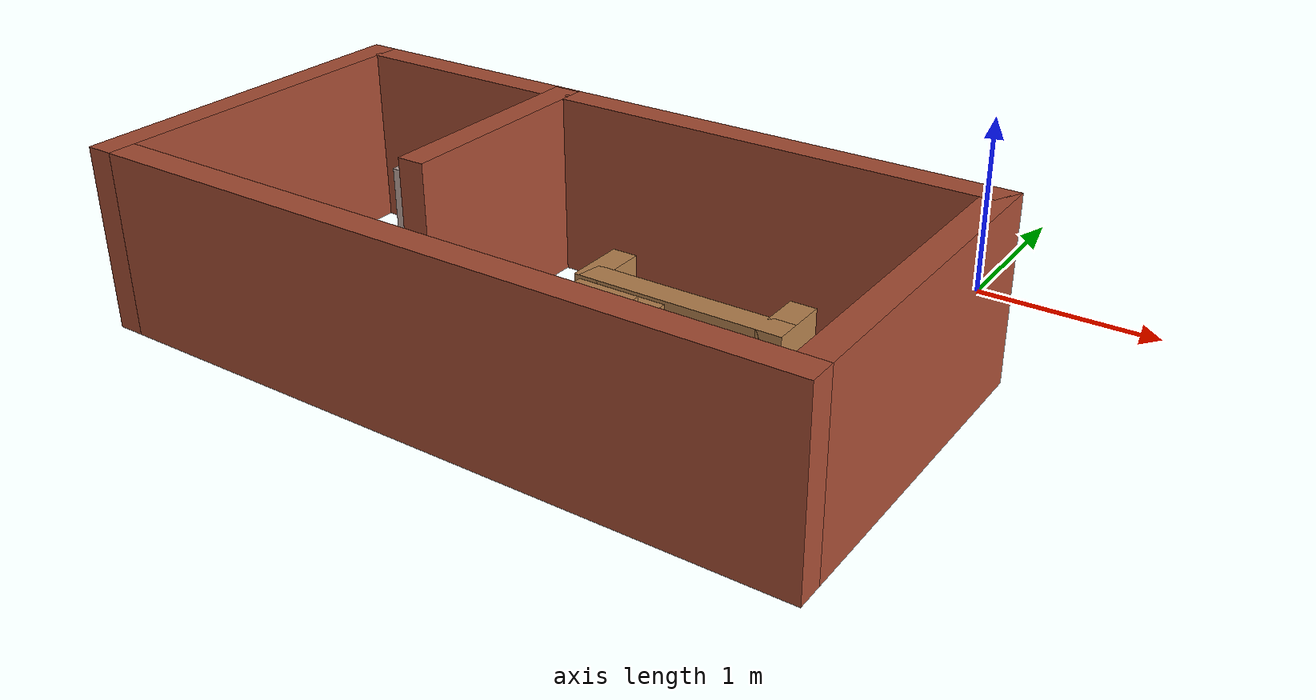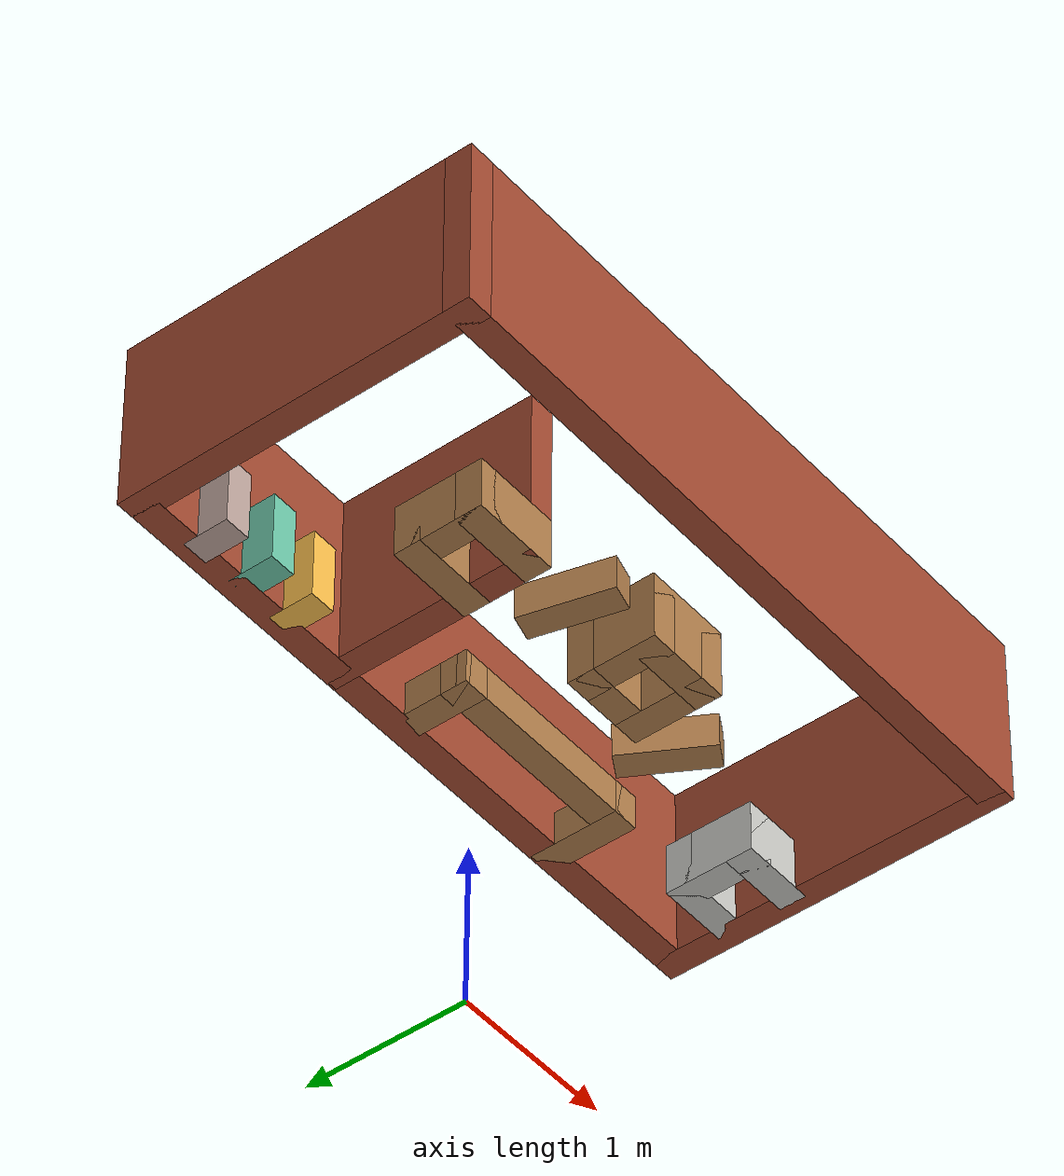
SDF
<?xml version="1.0" ?>
<sdf version='1.7'>
    <model name='my_world'>
      <pose>-1.525 -1.4325 0 0 -0 0</pose>
      <link name='Wall_11'>
        <collision name='Wall_11_Collision'>
          <geometry>
            <box>
              <size>0.25 0.15 0.4</size>
            </box>
          </geometry>
          <pose>0 0 0.2 0 -0 0</pose>
          <max_contacts>10</max_contacts>
          <surface>
            <contact>
              <ode/>
            </contact>
            <bounce/>
            <friction>
              <torsional>
                <ode/>
              </torsional>
              <ode/>
            </friction>
          </surface>
        </collision>
        <visual name='Wall_11_Visual'>
          <pose>0 0 0.2 0 -0 0</pose>
          <geometry>
            <box>
              <size>0.25 0.15 0.4</size>
            </box>
          </geometry>
          <material>
            <script>
              <uri>file://media/materials/scripts/gazebo.material</uri>
              <name>Gazebo/Grey</name>
            </script>
            <ambient>0.435294 0.796078 0.67451 1</ambient>
          </material>
          <meta>
            <layer>0</layer>
          </meta>
        </visual>
        <pose>-1.255 0.3625 0 0 -0 -1.5708</pose>
        <self_collide>0</self_collide>
        <enable_wind>0</enable_wind>
        <kinematic>0</kinematic>
      </link>
      <link name='Wall_13'>
        <collision name='Wall_13_Collision'>
          <geometry>
            <box>
              <size>0.25 0.15 0.4</size>
            </box>
          </geometry>
          <pose>0 0 0.2 0 -0 0</pose>
          <max_contacts>10</max_contacts>
          <surface>
            <contact>
              <ode/>
            </contact>
            <bounce/>
            <friction>
              <torsional>
                <ode/>
              </torsional>
              <ode/>
            </friction>
          </surface>
        </collision>
        <visual name='Wall_13_Visual'>
          <pose>0 0 0.2 0 -0 0</pose>
          <geometry>
            <box>
              <size>0.25 0.15 0.4</size>
            </box>
          </geometry>
          <material>
            <script>
              <uri>file://media/materials/scripts/gazebo.material</uri>
              <name>Gazebo/Grey</name>
            </script>
            <ambient>1 0.764706 0.305882 1</ambient>
          </material>
          <meta>
            <layer>0</layer>
          </meta>
        </visual>
        <pose>-0.965 0.3725 0 0 -0 -1.5708</pose>
        <self_collide>0</self_collide>
        <enable_wind>0</enable_wind>
        <kinematic>0</kinematic>
      </link>
      <link name='Wall_15'>
        <collision name='Wall_15_Collision'>
          <geometry>
            <box>
              <size>0.5 0.15 0.2</size>
            </box>
          </geometry>
          <pose>0 0 0.1 0 -0 0</pose>
          <max_contacts>10</max_contacts>
          <surface>
            <contact>
              <ode/>
            </contact>
            <bounce/>
            <friction>
              <torsional>
                <ode/>
              </torsional>
              <ode/>
            </friction>
          </surface>
        </collision>
        <visual name='Wall_15_Visual'>
          <pose>0 0 0.1 0 -0 0</pose>
          <geometry>
            <box>
              <size>0.5 0.15 0.2</size>
            </box>
          </geometry>
          <material>
            <script>
              <uri>file://media/materials/scripts/gazebo.material</uri>
              <name>Gazebo/Wood</name>
            </script>
            <ambient>1 1 1 1</ambient>
          </material>
          <meta>
            <layer>0</layer>
          </meta>
        </visual>
        <pose>-0.105 0.3075 0 0 -0 -1.5708</pose>
        <self_collide>0</self_collide>
        <enable_wind>0</enable_wind>
        <kinematic>0</kinematic>
      </link>
      <link name='Wall_16'>
        <collision name='Wall_16_Collision'>
          <geometry>
            <box>
              <size>1.25 0.15 0.2</size>
            </box>
          </geometry>
          <pose>0 0 0.1 0 -0 0</pose>
          <max_contacts>10</max_contacts>
          <surface>
            <contact>
              <ode/>
            </contact>
            <bounce/>
            <friction>
              <torsional>
                <ode/>
              </torsional>
              <ode/>
            </friction>
          </surface>
        </collision>
        <visual name='Wall_16_Visual'>
          <pose>0 0 0.1 0 -0 0</pose>
          <geometry>
            <box>
              <size>1.25 0.15 0.2</size>
            </box>
          </geometry>
          <material>
            <script>
              <uri>file://media/materials/scripts/gazebo.material</uri>
              <name>Gazebo/Wood</name>
            </script>
            <ambient>1 1 1 1</ambient>
          </material>
          <meta>
            <layer>0</layer>
          </meta>
        </visual>
        <pose>0.445 0.1325 0 0 -0 0</pose>
        <self_collide>0</self_collide>
        <enable_wind>0</enable_wind>
        <kinematic>0</kinematic>
      </link>
      <link name='Wall_17'>
        <collision name='Wall_17_Collision'>
          <geometry>
            <box>
              <size>0.5 0.15 0.2</size>
            </box>
          </geometry>
          <pose>0 0 0.1 0 -0 0</pose>
          <max_contacts>10</max_contacts>
          <surface>
            <contact>
              <ode/>
            </contact>
            <bounce/>
            <friction>
              <torsional>
                <ode/>
              </torsional>
              <ode/>
            </friction>
          </surface>
        </collision>
        <visual name='Wall_17_Visual'>
          <pose>0 0 0.1 0 -0 0</pose>
          <geometry>
            <box>
              <size>0.5 0.15 0.2</size>
            </box>
          </geometry>
          <material>
            <script>
              <uri>file://media/materials/scripts/gazebo.material</uri>
              <name>Gazebo/Wood</name>
            </script>
            <ambient>1 1 1 1</ambient>
          </material>
          <meta>
            <layer>0</layer>
          </meta>
        </visual>
        <pose>0.995 0.3075 0 0 -0 1.5708</pose>
        <self_collide>0</self_collide>
        <enable_wind>0</enable_wind>
        <kinematic>0</kinematic>
      </link>
      <link name='Wall_2'>
        <collision name='Wall_2_Collision'>
          <geometry>
            <box>
              <size>4 0.15 1</size>
            </box>
          </geometry>
          <pose>0 0 0.5 0 -0 0</pose>
          <max_contacts>10</max_contacts>
          <surface>
            <contact>
              <ode/>
            </contact>
            <bounce/>
            <friction>
              <torsional>
                <ode/>
              </torsional>
              <ode/>
            </friction>
          </surface>
        </collision>
        <visual name='Wall_2_Visual'>
          <pose>0 0 0.5 0 -0 0</pose>
          <geometry>
            <box>
              <size>4 0.15 1</size>
            </box>
          </geometry>
          <material>
            <script>
              <uri>file://media/materials/scripts/gazebo.material</uri>
              <name>Gazebo/Bricks</name>
            </script>
            <ambient>1 1 1 1</ambient>
          </material>
          <meta>
            <layer>0</layer>
          </meta>
        </visual>
        <pose>0 0.4925 0 0 -0 0</pose>
        <self_collide>0</self_collide>
        <enable_wind>0</enable_wind>
        <kinematic>0</kinematic>
      </link>
      <link name='Wall_28'>
        <collision name='Wall_28_Collision'>
          <geometry>
            <box>
              <size>0.5 0.15 0.4</size>
            </box>
          </geometry>
          <pose>0 0 0.2 0 -0 0</pose>
          <max_contacts>10</max_contacts>
          <surface>
            <contact>
              <ode/>
            </contact>
            <bounce/>
            <friction>
              <torsional>
                <ode/>
              </torsional>
              <ode/>
            </friction>
          </surface>
        </collision>
        <visual name='Wall_28_Visual'>
          <pose>0 0 0.2 0 -0 0</pose>
          <geometry>
            <box>
              <size>0.5 0.15 0.4</size>
            </box>
          </geometry>
          <material>
            <script>
              <uri>file://media/materials/scripts/gazebo.material</uri>
              <name>Gazebo/Wood</name>
            </script>
            <ambient>1 1 1 1</ambient>
          </material>
          <meta>
            <layer>0</layer>
          </meta>
        </visual>
        <pose>0.195 -0.5425 0 0 -0 -1.5708</pose>
        <self_collide>0</self_collide>
        <enable_wind>0</enable_wind>
        <kinematic>0</kinematic>
      </link>
      <link name='Wall_29'>
        <collision name='Wall_29_Collision'>
          <geometry>
            <box>
              <size>0.5 0.15 0.4</size>
            </box>
          </geometry>
          <pose>0 0 0.2 0 -0 0</pose>
          <max_contacts>10</max_contacts>
          <surface>
            <contact>
              <ode/>
            </contact>
            <bounce/>
            <friction>
              <torsional>
                <ode/>
              </torsional>
              <ode/>
            </friction>
          </surface>
        </collision>
        <visual name='Wall_29_Visual'>
          <pose>0 0 0.2 0 -0 0</pose>
          <geometry>
            <box>
              <size>0.5 0.15 0.4</size>
            </box>
          </geometry>
          <material>
            <script>
              <uri>file://media/materials/scripts/gazebo.material</uri>
              <name>Gazebo/Wood</name>
            </script>
            <ambient>1 1 1 1</ambient>
          </material>
          <meta>
            <layer>0</layer>
          </meta>
        </visual>
        <pose>0.37 -0.7175 0 0 -0 0</pose>
        <self_collide>0</self_collide>
        <enable_wind>0</enable_wind>
        <kinematic>0</kinematic>
      </link>
      <link name='Wall_3'>
        <collision name='Wall_3_Collision'>
          <geometry>
            <box>
              <size>2 0.15 1</size>
            </box>
          </geometry>
          <pose>0 0 0.5 0 -0 0</pose>
          <max_contacts>10</max_contacts>
          <surface>
            <contact>
              <ode/>
            </contact>
            <bounce/>
            <friction>
              <torsional>
                <ode/>
              </torsional>
              <ode/>
            </friction>
          </surface>
        </collision>
        <visual name='Wall_3_Visual'>
          <pose>0 0 0.5 0 -0 0</pose>
          <geometry>
            <box>
              <size>2 0.15 1</size>
            </box>
          </geometry>
          <material>
            <script>
              <uri>file://media/materials/scripts/gazebo.material</uri>
              <name>Gazebo/Bricks</name>
            </script>
            <ambient>1 1 1 1</ambient>
          </material>
          <meta>
            <layer>0</layer>
          </meta>
        </visual>
        <pose>1.925 -0.4325 0 0 -0 -1.5708</pose>
        <self_collide>0</self_collide>
        <enable_wind>0</enable_wind>
        <kinematic>0</kinematic>
      </link>
      <link name='Wall_30'>
        <collision name='Wall_30_Collision'>
          <geometry>
            <box>
              <size>0.5 0.15 0.4</size>
            </box>
          </geometry>
          <pose>0 0 0.2 0 -0 0</pose>
          <max_contacts>10</max_contacts>
          <surface>
            <contact>
              <ode/>
            </contact>
            <bounce/>
            <friction>
              <torsional>
                <ode/>
              </torsional>
              <ode/>
            </friction>
          </surface>
        </collision>
        <visual name='Wall_30_Visual'>
          <pose>0 0 0.2 0 -0 0</pose>
          <geometry>
            <box>
              <size>0.5 0.15 0.4</size>
            </box>
          </geometry>
          <material>
            <script>
              <uri>file://media/materials/scripts/gazebo.material</uri>
              <name>Gazebo/Wood</name>
            </script>
            <ambient>1 1 1 1</ambient>
          </material>
          <meta>
            <layer>0</layer>
          </meta>
        </visual>
        <pose>0.545 -0.5425 0 0 -0 1.5708</pose>
        <self_collide>0</self_collide>
        <enable_wind>0</enable_wind>
        <kinematic>0</kinematic>
      </link>
      <link name='Wall_31'>
        <collision name='Wall_31_Collision'>
          <geometry>
            <box>
              <size>0.5 0.15 0.4</size>
            </box>
          </geometry>
          <pose>0 0 0.2 0 -0 0</pose>
          <max_contacts>10</max_contacts>
          <surface>
            <contact>
              <ode/>
            </contact>
            <bounce/>
            <friction>
              <torsional>
                <ode/>
              </torsional>
              <ode/>
            </friction>
          </surface>
        </collision>
        <visual name='Wall_31_Visual'>
          <pose>0 0 0.2 0 -0 0</pose>
          <geometry>
            <box>
              <size>0.5 0.15 0.4</size>
            </box>
          </geometry>
          <material>
            <script>
              <uri>file://media/materials/scripts/gazebo.material</uri>
              <name>Gazebo/Wood</name>
            </script>
            <ambient>1 1 1 1</ambient>
          </material>
          <meta>
            <layer>0</layer>
          </meta>
        </visual>
        <pose>0.37 -0.3675 0 0 -0 3.14159</pose>
        <self_collide>0</self_collide>
        <enable_wind>0</enable_wind>
        <kinematic>0</kinematic>
      </link>
      <link name='Wall_34'>
        <collision name='Wall_34_Collision'>
          <geometry>
            <box>
              <size>0.5 0.15 0.2</size>
            </box>
          </geometry>
          <pose>0 0 0.1 0 -0 0</pose>
          <max_contacts>10</max_contacts>
          <surface>
            <contact>
              <ode/>
            </contact>
            <bounce/>
            <friction>
              <torsional>
                <ode/>
              </torsional>
              <ode/>
            </friction>
          </surface>
        </collision>
        <visual name='Wall_34_Visual'>
          <pose>0 0 0.1 0 -0 0</pose>
          <geometry>
            <box>
              <size>0.5 0.15 0.2</size>
            </box>
          </geometry>
          <material>
            <script>
              <uri>file://media/materials/scripts/gazebo.material</uri>
              <name>Gazebo/Wood</name>
            </script>
            <ambient>1 1 1 1</ambient>
          </material>
          <meta>
            <layer>0</layer>
          </meta>
        </visual>
        <pose>0.8075 -0.336 0 0 -0 -1.04704</pose>
        <self_collide>0</self_collide>
        <enable_wind>0</enable_wind>
        <kinematic>0</kinematic>
      </link>
      <link name='Wall_36'>
        <collision name='Wall_36_Collision'>
          <geometry>
            <box>
              <size>0.5 0.15 0.2</size>
            </box>
          </geometry>
          <pose>0 0 0.1 0 -0 0</pose>
          <max_contacts>10</max_contacts>
          <surface>
            <contact>
              <ode/>
            </contact>
            <bounce/>
            <friction>
              <torsional>
                <ode/>
              </torsional>
              <ode/>
            </friction>
          </surface>
        </collision>
        <visual name='Wall_36_Visual'>
          <pose>0 0 0.1 0 -0 0</pose>
          <geometry>
            <box>
              <size>0.5 0.15 0.2</size>
            </box>
          </geometry>
          <material>
            <script>
              <uri>file://media/materials/scripts/gazebo.material</uri>
              <name>Gazebo/Wood</name>
            </script>
            <ambient>1 1 1 1</ambient>
          </material>
          <meta>
            <layer>0</layer>
          </meta>
        </visual>
        <pose>-0.2195 -0.5865 0 0 -0 -1.3078</pose>
        <self_collide>0</self_collide>
        <enable_wind>0</enable_wind>
        <kinematic>0</kinematic>
      </link>
      <link name='Wall_38'>
        <collision name='Wall_38_Collision'>
          <geometry>
            <box>
              <size>0.45 0.15 0.3</size>
            </box>
          </geometry>
          <pose>0 0 0.15 0 -0 0</pose>
          <max_contacts>10</max_contacts>
          <surface>
            <contact>
              <ode/>
            </contact>
            <bounce/>
            <friction>
              <torsional>
                <ode/>
              </torsional>
              <ode/>
            </friction>
          </surface>
        </collision>
        <visual name='Wall_38_Visual'>
          <pose>0 0 0.15 0 -0 0</pose>
          <geometry>
            <box>
              <size>0.45 0.15 0.3</size>
            </box>
          </geometry>
          <material>
            <script>
              <uri>file://media/materials/scripts/gazebo.material</uri>
              <name>Gazebo/CeilingTiled</name>
            </script>
            <ambient>1 1 1 1</ambient>
          </material>
          <meta>
            <layer>0</layer>
          </meta>
        </visual>
        <pose>1.735 0.1425 0 0 -0 3.14159</pose>
        <self_collide>0</self_collide>
        <enable_wind>0</enable_wind>
        <kinematic>0</kinematic>
      </link>
      <link name='Wall_39'>
        <collision name='Wall_39_Collision'>
          <geometry>
            <box>
              <size>0.5 0.15 0.3</size>
            </box>
          </geometry>
          <pose>0 0 0.15 0 -0 0</pose>
          <max_contacts>10</max_contacts>
          <surface>
            <contact>
              <ode/>
            </contact>
            <bounce/>
            <friction>
              <torsional>
                <ode/>
              </torsional>
              <ode/>
            </friction>
          </surface>
        </collision>
        <visual name='Wall_39_Visual'>
          <pose>0 0 0.15 0 -0 0</pose>
          <geometry>
            <box>
              <size>0.5 0.15 0.3</size>
            </box>
          </geometry>
          <material>
            <script>
              <uri>file://media/materials/scripts/gazebo.material</uri>
              <name>Gazebo/CeilingTiled</name>
            </script>
            <ambient>1 1 1 1</ambient>
          </material>
          <meta>
            <layer>0</layer>
          </meta>
        </visual>
        <pose>1.585 -0.0325 0 0 -0 -1.5708</pose>
        <self_collide>0</self_collide>
        <enable_wind>0</enable_wind>
        <kinematic>0</kinematic>
      </link>
      <link name='Wall_4'>
        <collision name='Wall_4_Collision'>
          <geometry>
            <box>
              <size>4 0.15 1</size>
            </box>
          </geometry>
          <pose>0 0 0.5 0 -0 0</pose>
          <max_contacts>10</max_contacts>
          <surface>
            <contact>
              <ode/>
            </contact>
            <bounce/>
            <friction>
              <torsional>
                <ode/>
              </torsional>
              <ode/>
            </friction>
          </surface>
        </collision>
        <visual name='Wall_4_Visual'>
          <pose>0 0 0.5 0 -0 0</pose>
          <geometry>
            <box>
              <size>4 0.15 1</size>
            </box>
          </geometry>
          <material>
            <script>
              <uri>file://media/materials/scripts/gazebo.material</uri>
              <name>Gazebo/Bricks</name>
            </script>
            <ambient>1 1 1 1</ambient>
          </material>
          <meta>
            <layer>0</layer>
          </meta>
        </visual>
        <pose>0 -1.3575 0 0 -0 3.14159</pose>
        <self_collide>0</self_collide>
        <enable_wind>0</enable_wind>
        <kinematic>0</kinematic>
      </link>
      <link name='Wall_40'>
        <collision name='Wall_40_Collision'>
          <geometry>
            <box>
              <size>0.45 0.15 0.3</size>
            </box>
          </geometry>
          <pose>0 0 0.15 0 -0 0</pose>
          <max_contacts>10</max_contacts>
          <surface>
            <contact>
              <ode/>
            </contact>
            <bounce/>
            <friction>
              <torsional>
                <ode/>
              </torsional>
              <ode/>
            </friction>
          </surface>
        </collision>
        <visual name='Wall_40_Visual'>
          <pose>0 0 0.15 0 -0 0</pose>
          <geometry>
            <box>
              <size>0.45 0.15 0.3</size>
            </box>
          </geometry>
          <material>
            <script>
              <uri>file://media/materials/scripts/gazebo.material</uri>
              <name>Gazebo/CeilingTiled</name>
            </script>
            <ambient>1 1 1 1</ambient>
          </material>
          <meta>
            <layer>0</layer>
          </meta>
        </visual>
        <pose>1.735 -0.2075 0 0 -0 0</pose>
        <self_collide>0</self_collide>
        <enable_wind>0</enable_wind>
        <kinematic>0</kinematic>
      </link>
      <link name='Wall_42'>
        <collision name='Wall_42_Collision'>
          <geometry>
            <box>
              <size>0.5 0.15 0.3</size>
            </box>
          </geometry>
          <pose>0 0 0.15 0 -0 0</pose>
          <max_contacts>10</max_contacts>
          <surface>
            <contact>
              <ode/>
            </contact>
            <bounce/>
            <friction>
              <torsional>
                <ode/>
              </torsional>
              <ode/>
            </friction>
          </surface>
        </collision>
        <visual name='Wall_42_Visual'>
          <pose>0 0 0.15 0 -0 0</pose>
          <geometry>
            <box>
              <size>0.5 0.15 0.3</size>
            </box>
          </geometry>
          <material>
            <script>
              <uri>file://media/materials/scripts/gazebo.material</uri>
              <name>Gazebo/Wood</name>
            </script>
            <ambient>1 1 1 1</ambient>
          </material>
          <meta>
            <layer>0</layer>
          </meta>
        </visual>
        <pose>-0.75 -0.6175 0 0 -0 3.14159</pose>
        <self_collide>0</self_collide>
        <enable_wind>0</enable_wind>
        <kinematic>0</kinematic>
      </link>
      <link name='Wall_43'>
        <collision name='Wall_43_Collision'>
          <geometry>
            <box>
              <size>0.5 0.15 0.3</size>
            </box>
          </geometry>
          <pose>0 0 0.15 0 -0 0</pose>
          <max_contacts>10</max_contacts>
          <surface>
            <contact>
              <ode/>
            </contact>
            <bounce/>
            <friction>
              <torsional>
                <ode/>
              </torsional>
              <ode/>
            </friction>
          </surface>
        </collision>
        <visual name='Wall_43_Visual'>
          <pose>0 0 0.15 0 -0 0</pose>
          <geometry>
            <box>
              <size>0.5 0.15 0.3</size>
            </box>
          </geometry>
          <material>
            <script>
              <uri>file://media/materials/scripts/gazebo.material</uri>
              <name>Gazebo/Wood</name>
            </script>
            <ambient>1 1 1 1</ambient>
          </material>
          <meta>
            <layer>0</layer>
          </meta>
        </visual>
        <pose>-0.925 -0.4425 0 0 -0 1.5708</pose>
        <self_collide>0</self_collide>
        <enable_wind>0</enable_wind>
        <kinematic>0</kinematic>
      </link>
      <link name='Wall_44'>
        <collision name='Wall_44_Collision'>
          <geometry>
            <box>
              <size>0.5 0.15 0.3</size>
            </box>
          </geometry>
          <pose>0 0 0.15 0 -0 0</pose>
          <max_contacts>10</max_contacts>
          <surface>
            <contact>
              <ode/>
            </contact>
            <bounce/>
            <friction>
              <torsional>
                <ode/>
              </torsional>
              <ode/>
            </friction>
          </surface>
        </collision>
        <visual name='Wall_44_Visual'>
          <pose>0 0 0.15 0 -0 0</pose>
          <geometry>
            <box>
              <size>0.5 0.15 0.3</size>
            </box>
          </geometry>
          <material>
            <script>
              <uri>file://media/materials/scripts/gazebo.material</uri>
              <name>Gazebo/Wood</name>
            </script>
            <ambient>1 1 1 1</ambient>
          </material>
          <meta>
            <layer>0</layer>
          </meta>
        </visual>
        <pose>-0.75 -0.2675 0 0 -0 0</pose>
        <self_collide>0</self_collide>
        <enable_wind>0</enable_wind>
        <kinematic>0</kinematic>
      </link>
      <link name='Wall_5'>
        <collision name='Wall_5_Collision'>
          <geometry>
            <box>
              <size>2 0.15 1</size>
            </box>
          </geometry>
          <pose>0 0 0.5 0 -0 0</pose>
          <max_contacts>10</max_contacts>
          <surface>
            <contact>
              <ode/>
            </contact>
            <bounce/>
            <friction>
              <torsional>
                <ode/>
              </torsional>
              <ode/>
            </friction>
          </surface>
        </collision>
        <visual name='Wall_5_Visual'>
          <pose>0 0 0.5 0 -0 0</pose>
          <geometry>
            <box>
              <size>2 0.15 1</size>
            </box>
          </geometry>
          <material>
            <script>
              <uri>file://media/materials/scripts/gazebo.material</uri>
              <name>Gazebo/Bricks</name>
            </script>
            <ambient>1 1 1 1</ambient>
          </material>
          <meta>
            <layer>0</layer>
          </meta>
        </visual>
        <pose>-1.925 -0.4325 0 0 -0 1.5708</pose>
        <self_collide>0</self_collide>
        <enable_wind>0</enable_wind>
        <kinematic>0</kinematic>
      </link>
      <link name='Wall_7'>
        <collision name='Wall_7_Collision'>
          <geometry>
            <box>
              <size>1.25 0.15 1</size>
            </box>
          </geometry>
          <pose>0 0 0.5 0 -0 0</pose>
          <max_contacts>10</max_contacts>
          <surface>
            <contact>
              <ode/>
            </contact>
            <bounce/>
            <friction>
              <torsional>
                <ode/>
              </torsional>
              <ode/>
            </friction>
          </surface>
        </collision>
        <visual name='Wall_7_Visual'>
          <pose>0 0 0.5 0 -0 0</pose>
          <geometry>
            <box>
              <size>1.25 0.15 1</size>
            </box>
          </geometry>
          <material>
            <script>
              <uri>file://media/materials/scripts/gazebo.material</uri>
              <name>Gazebo/Bricks</name>
            </script>
            <ambient>1 1 1 1</ambient>
          </material>
          <meta>
            <layer>0</layer>
          </meta>
        </visual>
        <pose>-0.575 -0.0675 0 0 -0 -1.5708</pose>
        <self_collide>0</self_collide>
        <enable_wind>0</enable_wind>
        <kinematic>0</kinematic>
      </link>
      <link name='Wall_9'>
        <collision name='Wall_9_Collision'>
          <geometry>
            <box>
              <size>0.25 0.15 0.4</size>
            </box>
          </geometry>
          <pose>0 0 0.2 0 -0 0</pose>
          <max_contacts>10</max_contacts>
          <surface>
            <contact>
              <ode/>
            </contact>
            <bounce/>
            <friction>
              <torsional>
                <ode/>
              </torsional>
              <ode/>
            </friction>
          </surface>
        </collision>
        <visual name='Wall_9_Visual'>
          <pose>0 0 0.2 0 -0 0</pose>
          <geometry>
            <box>
              <size>0.25 0.15 0.4</size>
            </box>
          </geometry>
          <material>
            <script>
              <uri>file://media/materials/scripts/gazebo.material</uri>
              <name>Gazebo/Grey</name>
            </script>
            <ambient>0.760784 0.662745 0.627451 1</ambient>
          </material>
          <meta>
            <layer>0</layer>
          </meta>
        </visual>
        <pose>-1.555 0.3725 0 0 -0 -1.5708</pose>
        <self_collide>0</self_collide>
        <enable_wind>0</enable_wind>
        <kinematic>0</kinematic>
      </link>
      <static>1</static>
    </model>
</sdf>
